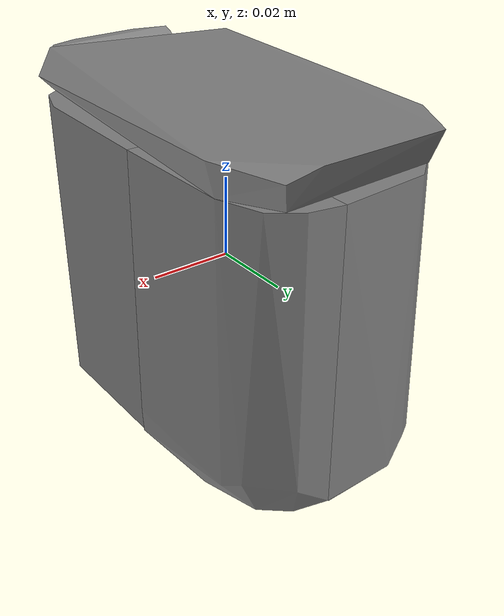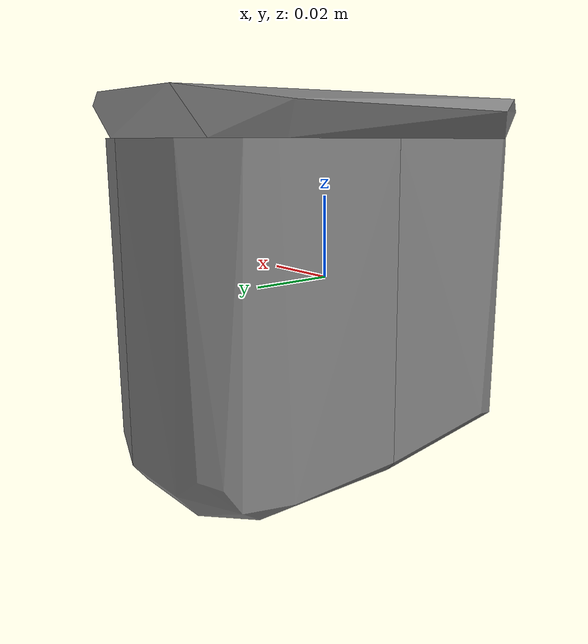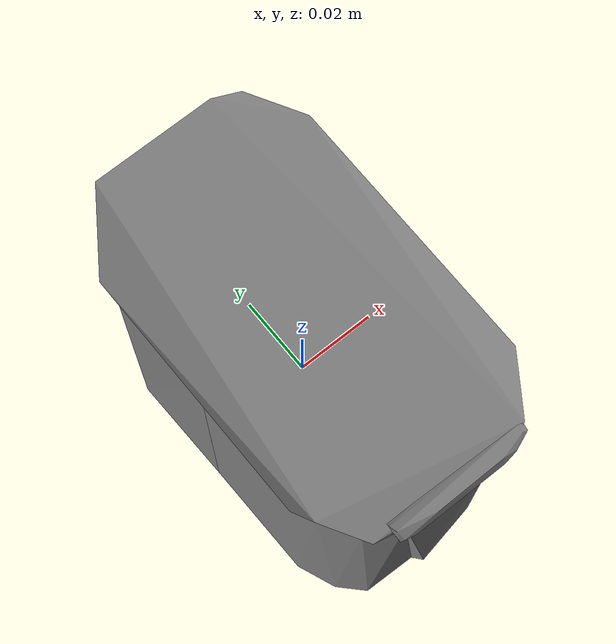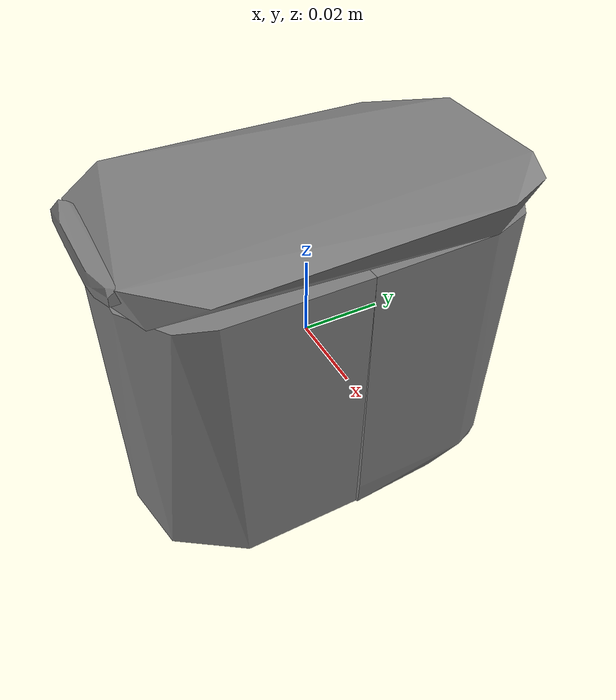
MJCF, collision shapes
<mujoco model="potted_meat_can">
  <compiler angle="radian" />

  <asset>
    <mesh name="potted_meat_can_visual_mesh" file="potted_meat_can/textured.obj" />
    <mesh name="potted_meat_can_collision_mesh_0" file="potted_meat_can/textured_coacd_0.stl" />
    <mesh name="potted_meat_can_collision_mesh_1" file="potted_meat_can/textured_coacd_1.stl" />
    <mesh name="potted_meat_can_collision_mesh_2" file="potted_meat_can/textured_coacd_2.stl" />
    <mesh name="potted_meat_can_collision_mesh_3" file="potted_meat_can/textured_coacd_3.stl" />
    <mesh name="potted_meat_can_collision_mesh_4" file="potted_meat_can/textured_coacd_4.stl" />
    <texture name="potted_meat_can_texture" type="2d" file="potted_meat_can/texture_map.png" />
    <material name="potted_meat_can_material" texture="potted_meat_can_texture" />
  </asset>

  <worldbody>
    <body name="potted_meat_can" pos="0 0 0" euler="0 0 0">
      <freejoint name="potted_meat_can_joint" />
      <geom name="potted_meat_can_visual_geom" type="mesh" mesh="potted_meat_can_visual_mesh" material="potted_meat_can_material" pos="-0.0 0.0 0.0" euler="0 0 0" contype="0" conaffinity="0" group="0" />
      <geom name="potted_meat_can_collision_geom_0" type="mesh" mesh="potted_meat_can_collision_mesh_0" pos="-0.0 0.0 0.0" euler="0 0 0" contype="1" conaffinity="1" group="3" />
      <geom name="potted_meat_can_collision_geom_1" type="mesh" mesh="potted_meat_can_collision_mesh_1" pos="-0.0 0.0 0.0" euler="0 0 0" contype="1" conaffinity="1" group="3" />
      <geom name="potted_meat_can_collision_geom_2" type="mesh" mesh="potted_meat_can_collision_mesh_2" pos="-0.0 0.0 0.0" euler="0 0 0" contype="1" conaffinity="1" group="3" />
      <geom name="potted_meat_can_collision_geom_3" type="mesh" mesh="potted_meat_can_collision_mesh_3" pos="-0.0 0.0 0.0" euler="0 0 0" contype="1" conaffinity="1" group="3" />
      <geom name="potted_meat_can_collision_geom_4" type="mesh" mesh="potted_meat_can_collision_mesh_4" pos="-0.0 0.0 0.0" euler="0 0 0" contype="1" conaffinity="1" group="3" />
      <inertial pos="0 0 0" euler="0 0 0" mass="0.37" diaginertia="0.001 0.001 0.001" />
    </body>
  </worldbody>
</mujoco>
